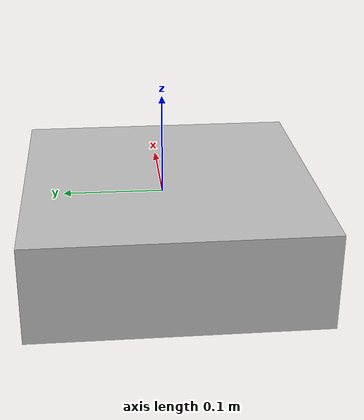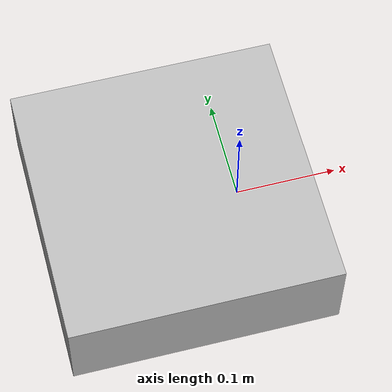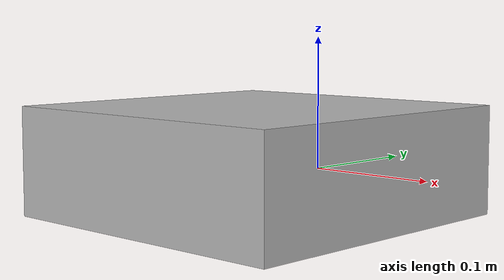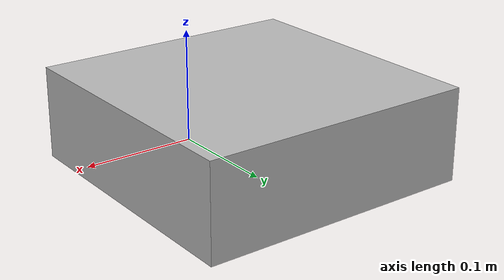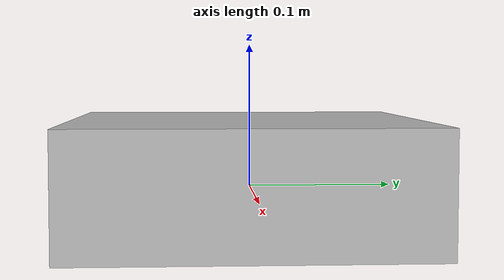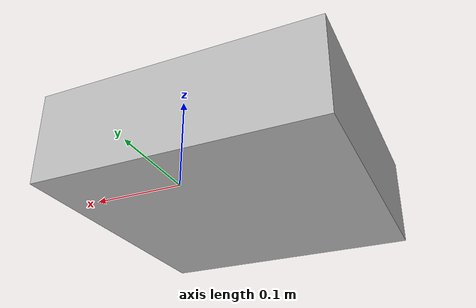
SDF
<?xml version="1.0" ?>
<sdf version="1.4">
  <model name="turtlebot3_waffle">
  <pose>0.0 0.0 0.0 0.0 0.0 0.0</pose>

    <link name="base_footprint"/>

    <link name="base_link">

      <inertial>
        <pose>-0.064 0 0.048 0 0 0</pose>
        <inertia>
          <ixx>0.001</ixx>
          <ixy>0.000</ixy>
          <ixz>0.000</ixz>
          <iyy>0.001</iyy>
          <iyz>0.000</iyz>
          <izz>0.001</izz>
        </inertia>
        <mass>1.0</mass>
      </inertial>

      <collision name="base_collision">
        <pose>-0.064 0 0.048 0 0 0</pose>
        <geometry>
          <box>
            <size>0.265 0.265 0.089</size>
          </box>
        </geometry>
      </collision>

      <visual name="base_visual">
        <pose>-0.064 0 0 0 0 0</pose>
        <geometry>
          <box>
            <size>0.265 0.265 0.089</size>
          </box>
        </geometry>
      </visual>
    </link>

  </model>
</sdf>
